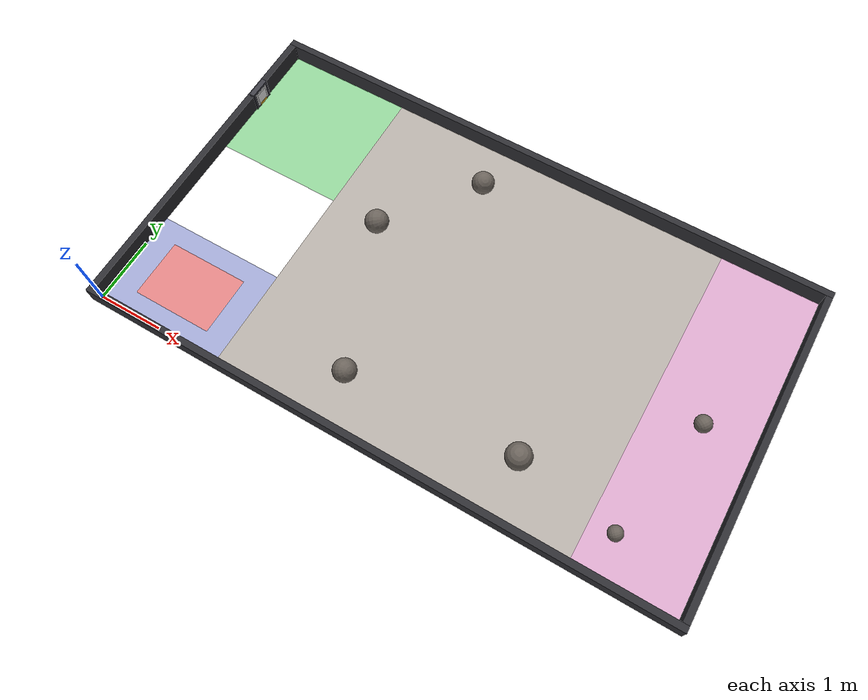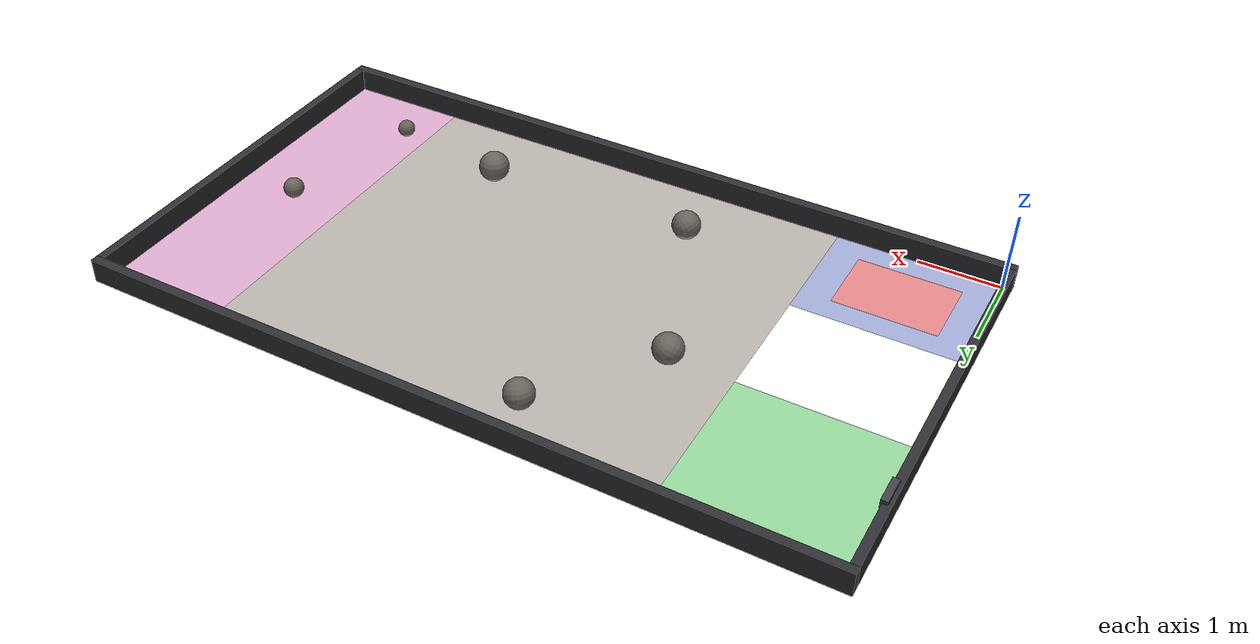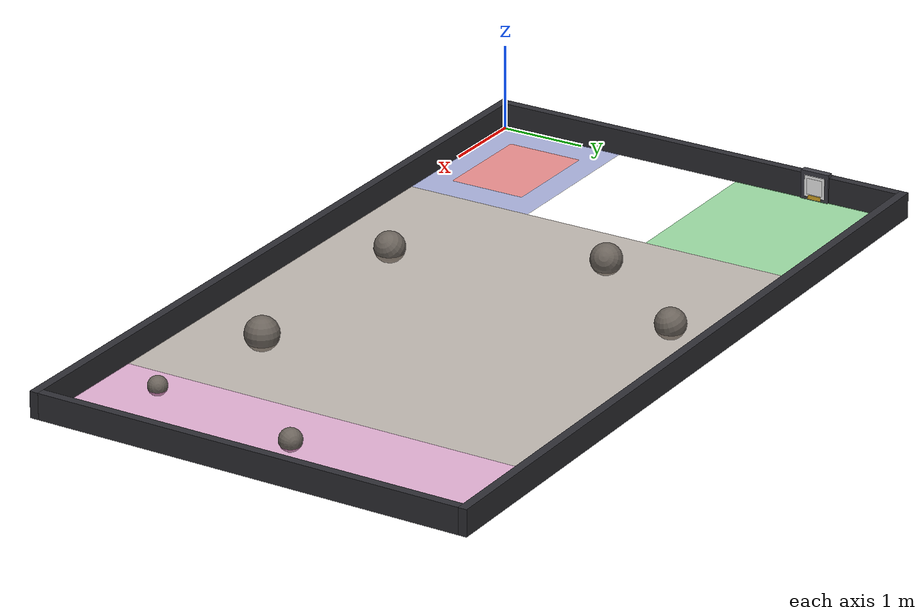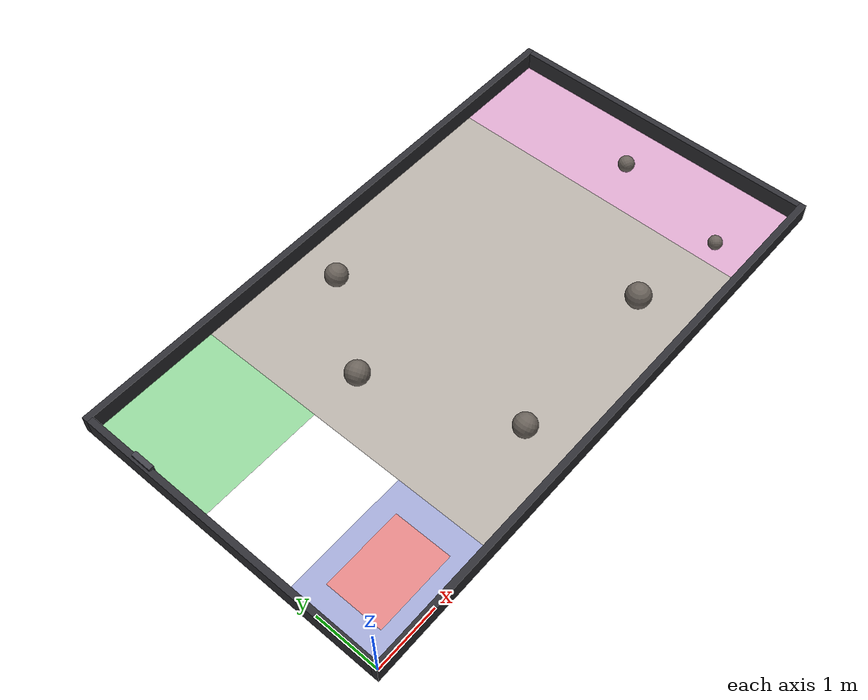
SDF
<sdf version="1.6">
 <world name="lunar_arena">
  <light name="sun" type="directional">
   <pose>0 0 12 0 0 0</pose>
   <diffuse>1.0 0.98 0.95 1</diffuse>
   <specular>0.3 0.3 0.3 1</specular>
   <attenuation>
    <range>1000</range>
    <constant>0.9</constant>
    <linear>0.01</linear>
    <quadratic>0.001</quadratic>
   </attenuation>
   <direction>-0.5 0.2 -0.8</direction>
  </light>
  <model name="zone_starting">
   <static>true</static>
   <link name="link">
    <pose>1.000 4.000 0.002 0 0 0</pose>
    <visual name="visual">
     <cast_shadows>false</cast_shadows>
     <geometry><box><size>2.000 2.000 0.001</size></box></geometry>
     <material><ambient>0.30 0.75 0.35 0.55</ambient><diffuse>0.30 0.75 0.35 0.55</diffuse></material>
    </visual>
   </link>
  </model>
  <model name="zone_construction">
   <static>true</static>
   <link name="link">
    <pose>1.000 0.750 0.002 0 0 0</pose>
    <visual name="visual">
     <cast_shadows>false</cast_shadows>
     <geometry><box><size>2.000 1.500 0.001</size></box></geometry>
     <material><ambient>0.40 0.45 0.75 0.55</ambient><diffuse>0.40 0.45 0.75 0.55</diffuse></material>
    </visual>
   </link>
  </model>
  <model name="zone_berm_target">
   <static>true</static>
   <link name="link">
    <pose>1.000 0.750 0.004 0 0 0</pose>
    <visual name="visual">
     <cast_shadows>false</cast_shadows>
     <geometry><box><size>1.250 0.900 0.001</size></box></geometry>
     <material><ambient>0.85 0.20 0.20 0.55</ambient><diffuse>0.85 0.20 0.20 0.55</diffuse></material>
    </visual>
   </link>
  </model>
  <model name="zone_obstacle">
   <static>true</static>
   <link name="link">
    <pose>4.750 2.500 0.002 0 0 0</pose>
    <visual name="visual">
     <cast_shadows>false</cast_shadows>
     <geometry><box><size>5.500 5.000 0.001</size></box></geometry>
     <material><ambient>0.55 0.50 0.45 0.55</ambient><diffuse>0.55 0.50 0.45 0.55</diffuse></material>
    </visual>
   </link>
  </model>
  <model name="zone_excavation">
   <static>true</static>
   <link name="link">
    <pose>8.250 2.500 0.002 0 0 0</pose>
    <visual name="visual">
     <cast_shadows>false</cast_shadows>
     <geometry><box><size>1.500 5.000 0.001</size></box></geometry>
     <material><ambient>0.80 0.45 0.70 0.55</ambient><diffuse>0.80 0.45 0.70 0.55</diffuse></material>
    </visual>
   </link>
  </model>
  <model name="boulder_0">
   <static>true</static>
   <link name="link">
    <pose>6.318 0.874 0.093 0.00 0.00 0.00</pose>
    <collision name="collision">
     <geometry><sphere><radius>0.194</radius></sphere></geometry>
     <surface><friction><ode><mu>1.0</mu><mu2>1.0</mu2></ode></friction></surface>
    </collision>
    <visual name="visual">
     <geometry><sphere><radius>0.194</radius></sphere></geometry>
     <material>
      <ambient>0.22 0.20 0.19 1</ambient>
      <diffuse>0.42 0.39 0.36 1</diffuse>
      <specular>0.05 0.05 0.05 1</specular>
     </material>
    </visual>
   </link>
  </model>
  <model name="boulder_1">
   <static>true</static>
   <link name="link">
    <pose>3.838 4.364 0.076 0.30 0.20 0.50</pose>
    <collision name="collision">
     <geometry><sphere><radius>0.176</radius></sphere></geometry>
     <surface><friction><ode><mu>1.0</mu><mu2>1.0</mu2></ode></friction></surface>
    </collision>
    <visual name="visual">
     <geometry><sphere><radius>0.176</radius></sphere></geometry>
     <material>
      <ambient>0.22 0.20 0.19 1</ambient>
      <diffuse>0.42 0.39 0.36 1</diffuse>
      <specular>0.05 0.05 0.05 1</specular>
     </material>
    </visual>
   </link>
  </model>
  <model name="boulder_2">
   <static>true</static>
   <link name="link">
    <pose>3.654 0.761 0.061 0.60 0.40 1.00</pose>
    <collision name="collision">
     <geometry><sphere><radius>0.178</radius></sphere></geometry>
     <surface><friction><ode><mu>1.0</mu><mu2>1.0</mu2></ode></friction></surface>
    </collision>
    <visual name="visual">
     <geometry><sphere><radius>0.178</radius></sphere></geometry>
     <material>
      <ambient>0.22 0.20 0.19 1</ambient>
      <diffuse>0.42 0.39 0.36 1</diffuse>
      <specular>0.05 0.05 0.05 1</specular>
     </material>
    </visual>
   </link>
  </model>
  <model name="boulder_3">
   <static>true</static>
   <link name="link">
    <pose>2.801 2.974 0.107 0.90 0.60 1.50</pose>
    <collision name="collision">
     <geometry><sphere><radius>0.182</radius></sphere></geometry>
     <surface><friction><ode><mu>1.0</mu><mu2>1.0</mu2></ode></friction></surface>
    </collision>
    <visual name="visual">
     <geometry><sphere><radius>0.182</radius></sphere></geometry>
     <material>
      <ambient>0.22 0.20 0.19 1</ambient>
      <diffuse>0.42 0.39 0.36 1</diffuse>
      <specular>0.05 0.05 0.05 1</specular>
     </material>
    </visual>
   </link>
  </model>
  <model name="boulder_4">
   <static>true</static>
   <link name="link">
    <pose>7.861 0.613 0.042 1.20 0.80 2.00</pose>
    <collision name="collision">
     <geometry><sphere><radius>0.110</radius></sphere></geometry>
     <surface><friction><ode><mu>1.0</mu><mu2>1.0</mu2></ode></friction></surface>
    </collision>
    <visual name="visual">
     <geometry><sphere><radius>0.110</radius></sphere></geometry>
     <material>
      <ambient>0.22 0.20 0.19 1</ambient>
      <diffuse>0.42 0.39 0.36 1</diffuse>
      <specular>0.05 0.05 0.05 1</specular>
     </material>
    </visual>
   </link>
  </model>
  <model name="boulder_5">
   <static>true</static>
   <link name="link">
    <pose>8.261 2.506 0.063 1.50 1.00 2.50</pose>
    <collision name="collision">
     <geometry><sphere><radius>0.128</radius></sphere></geometry>
     <surface><friction><ode><mu>1.0</mu><mu2>1.0</mu2></ode></friction></surface>
    </collision>
    <visual name="visual">
     <geometry><sphere><radius>0.128</radius></sphere></geometry>
     <material>
      <ambient>0.22 0.20 0.19 1</ambient>
      <diffuse>0.42 0.39 0.36 1</diffuse>
      <specular>0.05 0.05 0.05 1</specular>
     </material>
    </visual>
   </link>
  </model>
  <model name="wall_south">
   <static>true</static>
   <link name="link">
    <pose>4.500 -0.050 0.150 0 0 0</pose>
    <collision name="collision"><geometry><box><size>9.200 0.100 0.300</size></box></geometry></collision>
    <visual name="visual">
     <geometry><box><size>9.200 0.100 0.300</size></box></geometry>
     <material><ambient>0.10 0.10 0.11 1</ambient><diffuse>0.18 0.18 0.20 1</diffuse></material>
    </visual>
   </link>
  </model>
  <model name="wall_north">
   <static>true</static>
   <link name="link">
    <pose>4.500 5.050 0.150 0 0 0</pose>
    <collision name="collision"><geometry><box><size>9.200 0.100 0.300</size></box></geometry></collision>
    <visual name="visual">
     <geometry><box><size>9.200 0.100 0.300</size></box></geometry>
     <material><ambient>0.10 0.10 0.11 1</ambient><diffuse>0.18 0.18 0.20 1</diffuse></material>
    </visual>
   </link>
  </model>
  <model name="wall_west">
   <static>true</static>
   <link name="link">
    <pose>-0.050 2.500 0.150 0 0 0</pose>
    <collision name="collision"><geometry><box><size>0.100 5.000 0.300</size></box></geometry></collision>
    <visual name="visual">
     <geometry><box><size>0.100 5.000 0.300</size></box></geometry>
     <material><ambient>0.10 0.10 0.11 1</ambient><diffuse>0.18 0.18 0.20 1</diffuse></material>
    </visual>
   </link>
  </model>
  <model name="wall_east">
   <static>true</static>
   <link name="link">
    <pose>9.050 2.500 0.150 0 0 0</pose>
    <collision name="collision"><geometry><box><size>0.100 5.000 0.300</size></box></geometry></collision>
    <visual name="visual">
     <geometry><box><size>0.100 5.000 0.300</size></box></geometry>
     <material><ambient>0.10 0.10 0.11 1</ambient><diffuse>0.18 0.18 0.20 1</diffuse></material>
    </visual>
   </link>
  </model>
  <include>
   <uri>model://aruco_dock_station</uri>
   <name>starting_zone_marker</name>
   <pose>-0.02 4.000 0.0 0 0 0</pose>
  </include>
  <plugin name="gazebo_ros_state" filename="libgazebo_ros_state.so">
   <ros><namespace>/gazebo</namespace></ros>
   <update_rate>20.0</update_rate>
  </plugin>
  <scene>
   <ambient>0.35 0.35 0.35 1</ambient>
   <background>0.05 0.05 0.08 1</background>
   <shadows>true</shadows>
  </scene>
  <physics type="ode">
   <max_step_size>0.004</max_step_size>
   <real_time_factor>1</real_time_factor>
   <real_time_update_rate>250</real_time_update_rate>
   <ode>
    <solver><type>quick</type><iters>50</iters><sor>1.3</sor></solver>
    <constraints>
     <cfm>0.0</cfm>
     <erp>0.2</erp>
     <contact_max_correcting_vel>100.0</contact_max_correcting_vel>
     <contact_surface_layer>0.001</contact_surface_layer>
    </constraints>
   </ode>
  </physics>
 </world>
</sdf>

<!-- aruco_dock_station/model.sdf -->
<sdf version="1.6">
  <model name="aruco_dock_station">
    <static>true</static>
    <link name="link">

      <!-- Dock post -->
      <visual name="dock_post_visual">
        <pose>0 0 0.17 0 0 0</pose>
        <geometry>
          <box><size>0.08 0.34 0.34</size></box>
        </geometry>
        <material>
          <ambient>0.15 0.15 0.17 1.0</ambient>
          <diffuse>0.25 0.25 0.28 1.0</diffuse>
          <specular>0.1 0.1 0.1 1.0</specular>
        </material>
      </visual>
      <collision name="dock_post_collision">
        <pose>0 0 0.17 0 0 0</pose>
        <geometry>
          <box><size>0.08 0.34 0.34</size></box>
        </geometry>
        <surface>
          <friction><ode><mu>0.8</mu><mu2>0.8</mu2></ode></friction>
        </surface>
      </collision>

      <!-- White backing board: gives the marker a clean quiet zone -->
      <visual name="marker_backing_visual">
        <pose>0.0425 0 0.162 0 0 0</pose>
        <geometry>
          <box><size>0.005 0.25 0.25</size></box>
        </geometry>
        <material>
          <ambient>0.9 0.9 0.9 1.0</ambient>
          <diffuse>1.0 1.0 1.0 1.0</diffuse>
        </material>
      </visual>

      <!-- Marker plate: 0.1875 m wide => 0.150 m of printed marker -->
      <visual name="aruco_marker_visual">
        <pose>0.0455 0 0.162 0 0 0</pose>
        <geometry>
          <box><size>0.002 0.1875 0.1875</size></box>
        </geometry>
        <material>
          <script>
            <uri>model://aruco_dock_station/materials/scripts</uri>
            <uri>model://aruco_dock_station/materials/textures</uri>
            <name>Aruco/Marker42</name>
          </script>
          <!-- Unlit-ish so the marker stays high contrast regardless of the sun angle -->
          <ambient>1 1 1 1</ambient>
          <diffuse>1 1 1 1</diffuse>
          <specular>0 0 0 1</specular>
        </material>
      </visual>

      <!-- Charging plate the robot noses up to -->
      <visual name="contact_plate_visual">
        <pose>0.0425 0 0.033 0 0 0</pose>
        <geometry>
          <box><size>0.006 0.16 0.05</size></box>
        </geometry>
        <material>
          <ambient>0.6 0.45 0.1 1.0</ambient>
          <diffuse>0.9 0.7 0.15 1.0</diffuse>
        </material>
      </visual>

    </link>
  </model>
</sdf>
